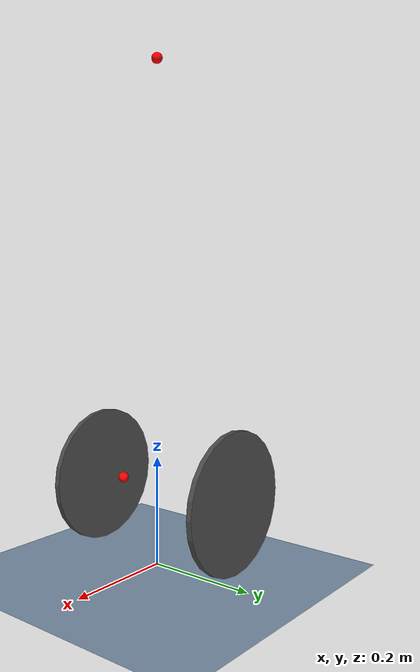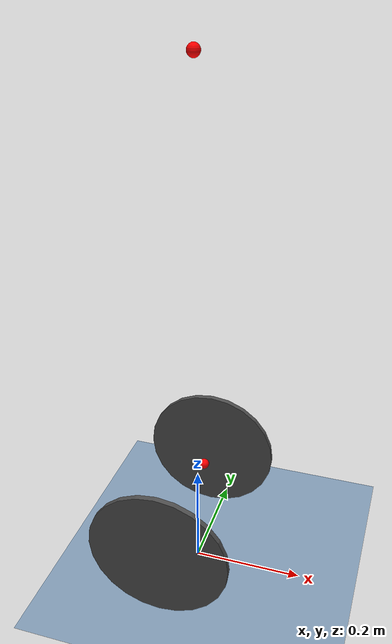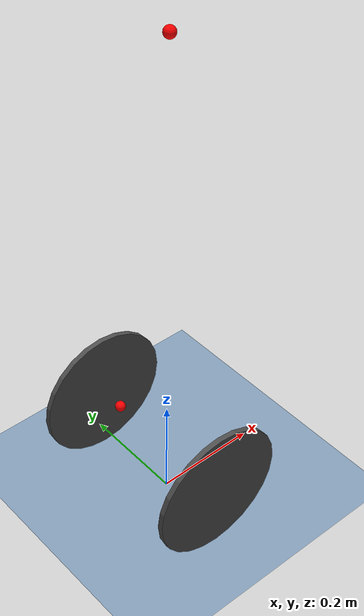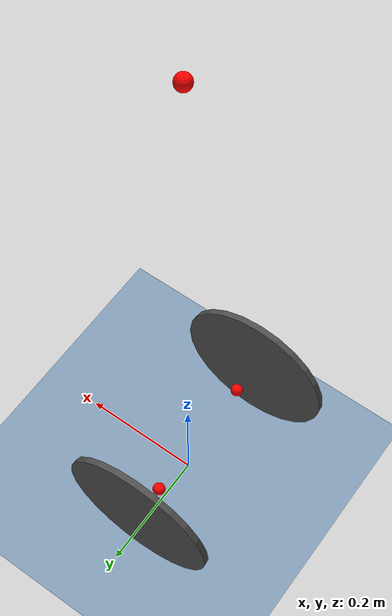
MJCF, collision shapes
<mujoco model="wheel_foot">
    <compiler angle="radian" meshdir="../meshes/" />

    <option iterations="4" ls_iterations="5" timestep="0.002" integrator="Euler">
        <flag eulerdamp="disable"/>
    </option>

    <default>
        <default class="tron">
            <geom condim="1" contype="0" conaffinity="0"/>
            <site size="0.01" rgba="1 0 0 1" group="4"/>
            <joint axis="0 0 1" damping="1.5"/>

            <default class="tron/joint">
                <joint armature="0.01" frictionloss="0.3" actuatorfrcrange="-30 30"/>
                <position kp="45" kv="1.5"/>
            </default>

            <default class="tron/joint_vel">
                <joint armature="0.01" frictionloss="0.01" actuatorfrcrange="-30 30"/>
                <velocity kv="0.8"/>
            </default>

            <default class="tron/visual">
                <geom type="mesh" contype="0" conaffinity="0" density="0" group="2"/>
            </default>

            <default class="tron/collision">
                <geom group="3" rgba=".3 .3 .3 1"/>

                <default class="tron/collision/foot">
                    <geom friction="0.8 0.02 0.01" type="cylinder" size="0.127 0.005" quat="0.707107 0.707107 0 0"
                          contype="1" conaffinity="1"/>
                </default>
            </default>

            <default class="tron/site">
                <site size="0.01" rgba="1 0 0 1" group="0"/>
            </default>
        </default>
    </default>

    <visual>
        <rgba com="0.502 1.0 0 0.5" contactpoint="1.0 1.0 0.6 0.4" contactforce="0.2 0.98 0.2 0.8"/>
        <scale com="0.2" forcewidth="0.05" contactwidth="0.10" contactheight="0.04"/>
    </visual>

    <asset>
        <mesh name="base_Link" file="base_Link.STL" />
        <mesh name="abad_L_Link" file="abad_L_Link.STL" />
        <mesh name="hip_L_Link" file="hip_L_Link.STL" />
        <mesh name="knee_L_Link" file="knee_L_Link.STL" />
        <mesh name="wheel_L_Link" file="wheel_L_Link.STL" />
        <mesh name="abad_R_Link" file="abad_R_Link.STL" />
        <mesh name="hip_R_Link" file="hip_R_Link.STL" />
        <mesh name="knee_R_Link" file="knee_R_Link.STL" />
        <mesh name="wheel_R_Link" file="wheel_R_Link.STL" />
    </asset>

    <asset>
        <texture type='skybox' builtin='gradient' width='512' height='512' rgb1="1.0 1.0 1.0" rgb2="1.0 1.0 1.0"/>
        <texture name="texplane" type="2d" builtin="checker" rgb1="0.35 0.35 0.35" rgb2="0.55 0.55 0.55" width="512" height="512" mark="cross" markrgb=".8 .8 .8"/>
        <material name="matplane" reflectance="0.0" texture="texplane" texrepeat="1 1" texuniform="true"/>
    </asset>

    <worldbody>
        <geom name="floor" rgba="0.5 0.6 0.7 1" pos="0 0 0" size="0 0 0.25" type="plane" material="matplane" condim="3"/>
        <camera name="track" mode="trackcom" pos="0 -2.3 1.6" xyaxes="1 0 0 0 0.707 0.707"/>
        <light directional="true" diffuse=".8 .8 .8" pos="0 0 10" dir="0 0 -10"/>

        <body name="base_Link" pos="0 0 0.92">
            <inertial pos="0.0457123 0.000139854 -0.163809" quat="0.972578 -0.00615364 -0.232461 0.00398682" mass="9.595" diaginertia="0.154712 0.11093 0.0846371" />
            <joint type="free" limited="false" damping="0.0000" stiffness="0.0000" armature="0"/>
            <site name="imu" pos="0 0 0" class="tron/site"/>
            <geom class="tron/visual" rgba="0.79216 0.81961 0.93333 1" mesh="base_Link" />
            <geom name="base_collision" class="tron/collision" size="0.135 0.13 0.095" pos="0.03 0 -0.072" type="box" rgba="0 0 1 0" />

            <body name="abad_L_Link" pos="0.05556 0.105 -0.2602">
                <inertial pos="-0.06977 0.04479 0.00057" quat="0.595024 0.579772 0.394141 0.393019" mass="1.469" diaginertia="0.00252289 0.00208104 0.00139163" />
                <joint name="abad_L_Joint" pos="0 0 0" axis="1 0 0" limited="true" range="-0.38397 1.39626" />
                <geom class="tron/visual" rgba="0.79216 0.81961 0.93333 1" mesh="abad_L_Link" />
                <geom name="abad_L_collision" class="tron/collision" type="cylinder" pos="-0.08 0 0" euler="1.57 0 0" size="0.05 0.025" rgba="0 0 1 0" />

                <body name="hip_L_Link" pos="-0.077 0.0205 0">
                    <inertial pos="-0.02869 -0.0477 -0.03992" quat="0.853885 0.192797 0.226903 0.426877" mass="2.3" diaginertia="0.0233264 0.0230229 0.00277548" />
                    <joint name="hip_L_Joint" pos="0 0 0" axis="0 1 0" limited="true" range="-1.01229 1.39626" />
                    <geom class="tron/visual" rgba="1 1 1 1" mesh="hip_L_Link" />
                    <geom name="hip_L_collision" class="tron/collision" type="cylinder" pos="-0.1 -0.025 -0.14" euler="0 0.53 0" size="0.035 0.075" rgba="0 0 1 0" />

                    <body name="knee_L_Link" pos="-0.15 -0.0205 -0.25981">
                        <inertial pos="0.11913 0.01106 -0.20363" quat="0.687012 -0.159981 -0.201582 0.679548" mass="1.49" diaginertia="0.0177107 0.0171855 0.001015" />
                        <joint name="knee_L_Joint" pos="0 0 0" axis="0 -1 0" limited="true" range="-0.872665 1.36136" />
                        <geom class="tron/visual" rgba="0.79216 0.81961 0.93333 1" mesh="knee_L_Link" />
                        <geom name="knee_L_collision" class="tron/collision" type="cylinder" pos="0.078 0 -0.12" euler="0 -0.55 0" size="0.015 0.13" rgba ="0 0 1 0"/>
                        <site name="foot_L_site" pos="0.150 0 -0.2598" class="tron/site"/>

                        <body name="wheel_L_Link" pos="0.15 0.0435 -0.25981">
                            <inertial pos="3e-05 0.00807 -2e-05" quat="0.683013 0.183016 0.183017 0.683011" mass="1.08" diaginertia="0.00974272 0.00515568 0.00515344" />
                            <joint name="wheel_L_Joint" pos="0 0 0" axis="0 1 0" frictionloss="0.01" />
                            <geom class="tron/visual" rgba="0.26667 0.26667 0.26667 1" mesh="wheel_L_Link" />
                            <geom name="wheel_L_collision" pos="0.0 0.008 0.0" class="tron/collision/foot"/>
                        </body>
                    </body>
                </body>
            </body>
            <body name="abad_R_Link" pos="0.05556 -0.105 -0.2602">
                <inertial pos="-0.06977 -0.04479 0.00057" quat="0.393019 0.394141 0.579772 0.595024" mass="1.469" diaginertia="0.00252289 0.00208104 0.00139163" />
                <joint name="abad_R_Joint" pos="0 0 0" axis="1 0 0" limited="true" range="-1.39626 0.38397" />
                <geom class="tron/visual" rgba="0.79216 0.81961 0.93333 1" mesh="abad_R_Link" />
                <geom name="abad_R_collision" class="tron/collision" type="cylinder" pos="-0.08 0 0" euler="1.57 0 0" size="0.05 0.025" rgba="0 0 1 0" />

                <body name="hip_R_Link" pos="-0.077 -0.0205 0">
                    <inertial pos="-0.02869 0.0477 -0.03992" quat="0.426877 0.226903 0.192797 0.853885" mass="2.3" diaginertia="0.0233264 0.0230229 0.00277548" />
                    <joint name="hip_R_Joint" pos="0 0 0" axis="0 -1 0" limited="true" range="-1.39626 1.01229" />
                    <geom class="tron/visual" rgba="1 1 1 1" mesh="hip_R_Link" />
                    <geom name="hip_R_collision" class="tron/collision" type="cylinder" pos="-0.10 0.025 -0.14" euler="0 0.53 0" size="0.035 0.075" rgba="0 0 1 0" />

                    <body name="knee_R_Link" pos="-0.15 0.0205 -0.25981">
                        <inertial pos="0.11913 -0.01106 -0.20363" quat="0.679548 -0.201582 -0.159981 0.687012" mass="1.49" diaginertia="0.0177107 0.0171855 0.001015" />
                        <joint name="knee_R_Joint" pos="0 0 0" axis="0 1 0" limited="true" range="-1.36136 0.872665" />
                        <geom class="tron/visual" rgba="0.79216 0.81961 0.93333 1" mesh="knee_R_Link" />
                        <geom name="knee_R_collision" class="tron/collision" type="cylinder" pos="0.078 0 -0.12" euler="0 -0.55 0" size="0.015 0.13" rgba ="0 0 1 0"/>
                        <site name="foot_R_site" pos="0.150 0 -0.2598" class="tron/site"/>

                        <body name="wheel_R_Link" pos="0.15 -0.0435 -0.25981">
                            <inertial pos="3e-05 -0.00807 -2e-05" quat="0.683011 0.183017 0.183016 0.683013" mass="1.08" diaginertia="0.00974272 0.00515568 0.00515344" />
                            <joint name="wheel_R_Joint" pos="0 0 0" axis="0 1 0" frictionloss="0.01" />
                            <geom class="tron/visual" rgba="0.26667 0.26667 0.26667 1" mesh="wheel_R_Link" />
                            <geom name="wheel_R_collision" pos="0.0 -0.008 0.0" class="tron/collision/foot"/>
                        </body>
                    </body>
                </body>
            </body>
        </body>
    </worldbody>

    <actuator>
        <position class="tron/joint"  name="abad_L_Joint"   joint="abad_L_Joint"  />
        <position class="tron/joint"  name="hip_L_Joint"    joint="hip_L_Joint"   />
        <position class="tron/joint"  name="knee_L_Joint"   joint="knee_L_Joint"  />
        <velocity class="tron/joint_vel"  name="wheel_L_Joint"  joint="wheel_L_Joint" />
        <position class="tron/joint"  name="abad_R_Joint"   joint="abad_R_Joint"  />
        <position class="tron/joint"  name="hip_R_Joint"    joint="hip_R_Joint"   />
        <position class="tron/joint"  name="knee_R_Joint"   joint="knee_R_Joint"  />
        <velocity class="tron/joint_vel"  name="wheel_R_Joint"  joint="wheel_R_Joint" />
    </actuator>

    <sensor>
        <gyro site="imu" name="gyro"/>
        <velocimeter site="imu" name="local_linvel"/>
        <accelerometer site="imu" name="accelerometer"/>
        <framezaxis objtype="site" objname="imu" name="upvector"/>
        <framexaxis objtype="site" objname="imu" name="forwardvector"/>
        <framelinvel objtype="site" objname="imu" name="global_linvel"/>
        <frameangvel objtype="site" objname="imu" name="global_angvel"/>
        <framepos objtype="site" objname="imu" name="position"/>
        <framequat objtype="site" objname="imu" name="orientation"/>

        <framelinvel objtype="site" objname="foot_L_site" name="foot_L_site_global_linvel"/>
        <framelinvel objtype="site" objname="foot_R_site" name="foot_R_site_global_linvel"/>

        <framexaxis objtype="site" objname="foot_L_site" name="foot_L_site_upvector"/>
        <framexaxis objtype="site" objname="foot_R_site" name="foot_R_site_upvector"/>
        <framepos objtype="site" objname="foot_L_site" name="foot_L_site_pos"/>
        <framepos objtype="site" objname="foot_R_site" name="foot_R_site_pos"/>
    </sensor>

    <keyframe>
        <key name="home"
            qpos="
                0 0 1.0
                1 0 0 0
                0 0 0 0 0 0 0 0"
            ctrl="
                0 0 0 0 0 0 0 0"
        />
    </keyframe>

</mujoco>
